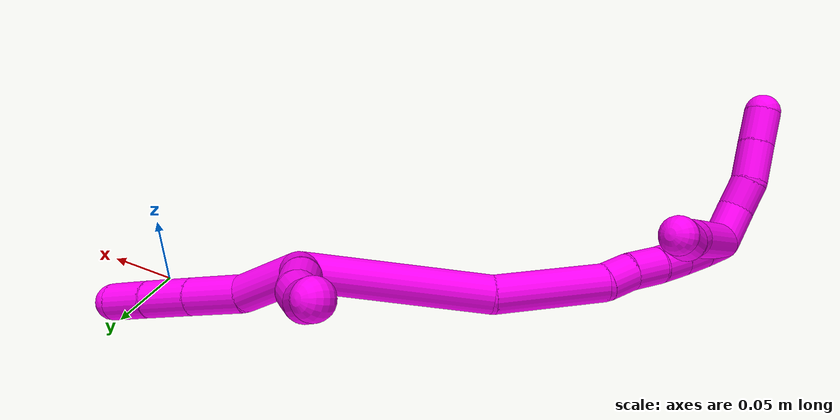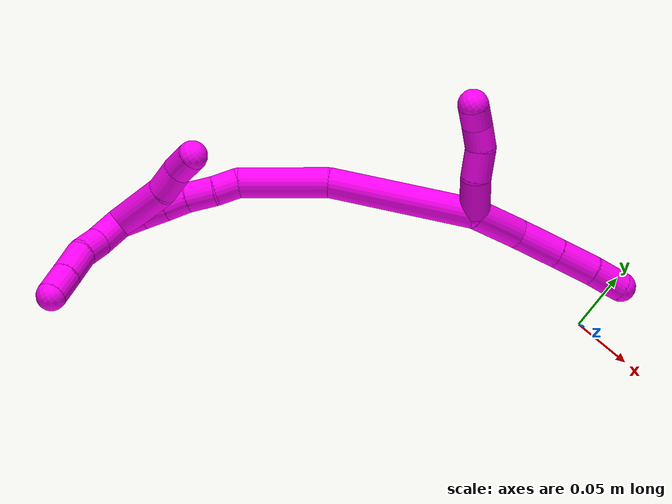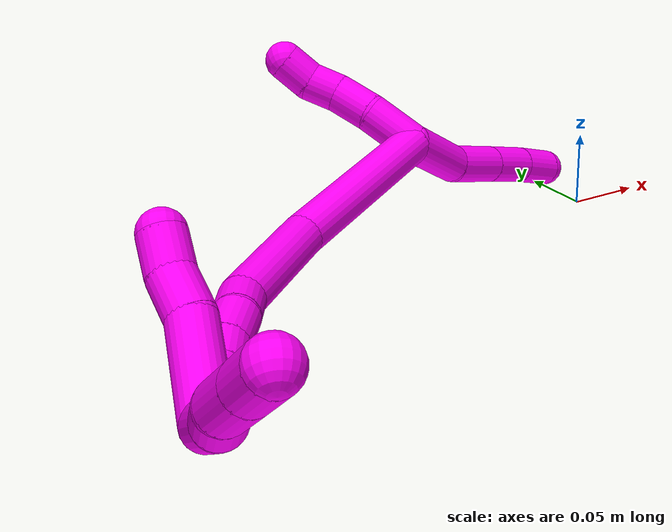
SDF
<sdf version="1.7">
 <world name="default">
  <model name="10">
   <static>0</static>
   <link name="10">
    <collision name="collision-cylinder-e_1_2_8">
     <pose>-0.00165 0.023048 -0.003395 -1.71707 -0.070692 0.081858</pose>
     <geometry><cylinder><radius>0.0125</radius><length>0.046711</length></cylinder></geometry>
     <surface>
      <friction><ode><mu>1.16</mu><mu2>1.16</mu2><slip1>0</slip1><slip2>0</slip2></ode></friction>
      <contact><ode><kp>1e+06</kp><kd>1</kd><max_vel>0</max_vel><min_depth>0.001</min_depth></ode></contact>
     </surface>
    </collision>
    <visual name="visual-cylinder-e_1_2_8">
     <pose>-0.00165 0.023048 -0.003395 -1.71707 -0.070692 0.081858</pose>
     <geometry><cylinder><radius>0.0125</radius><length>0.046711</length></cylinder></geometry>
     <material><ambient>1 0 0.964706 1</ambient></material>
    </visual>
    <collision name="collision-cylinder-e_2_8_9">
     <pose>-0.009057 0.063571 -0.013019 -1.91315 -0.300934 0.423526</pose>
     <geometry><cylinder><radius>0.0125</radius><length>0.038849</length></cylinder></geometry>
     <surface>
      <friction><ode><mu>1.16</mu><mu2>1.16</mu2><slip1>0</slip1><slip2>0</slip2></ode></friction>
      <contact><ode><kp>1e+06</kp><kd>1</kd><max_vel>0</max_vel><min_depth>0.001</min_depth></ode></contact>
     </surface>
    </collision>
    <visual name="visual-cylinder-e_2_8_9">
     <pose>-0.009057 0.063571 -0.013019 -1.91315 -0.300934 0.423526</pose>
     <geometry><cylinder><radius>0.0125</radius><length>0.038849</length></cylinder></geometry>
     <material><ambient>1 0 0.964706 1</ambient></material>
    </visual>
    <collision name="collision-cylinder-e_3_9_10">
     <pose>-0.019871 0.096558 -0.02462 -1.90424 -0.298811 0.416746</pose>
     <geometry><cylinder><radius>0.0125</radius><length>0.034353</length></cylinder></geometry>
     <surface>
      <friction><ode><mu>1.16</mu><mu2>1.16</mu2><slip1>0</slip1><slip2>0</slip2></ode></friction>
      <contact><ode><kp>1e+06</kp><kd>1</kd><max_vel>0</max_vel><min_depth>0.001</min_depth></ode></contact>
     </surface>
    </collision>
    <visual name="visual-cylinder-e_3_9_10">
     <pose>-0.019871 0.096558 -0.02462 -1.90424 -0.298811 0.416746</pose>
     <geometry><cylinder><radius>0.0125</radius><length>0.034353</length></cylinder></geometry>
     <material><ambient>1 0 0.964706 1</ambient></material>
    </visual>
    <collision name="collision-cylinder-e_4_10_6">
     <pose>-0.029411 0.125935 -0.033725 -1.83377 -0.302603 0.392753</pose>
     <geometry><cylinder><radius>0.0125</radius><length>0.030087</length></cylinder></geometry>
     <surface>
      <friction><ode><mu>1.16</mu><mu2>1.16</mu2><slip1>0</slip1><slip2>0</slip2></ode></friction>
      <contact><ode><kp>1e+06</kp><kd>1</kd><max_vel>0</max_vel><min_depth>0.001</min_depth></ode></contact>
     </surface>
    </collision>
    <visual name="visual-cylinder-e_4_10_6">
     <pose>-0.029411 0.125935 -0.033725 -1.83377 -0.302603 0.392753</pose>
     <geometry><cylinder><radius>0.0125</radius><length>0.030087</length></cylinder></geometry>
     <material><ambient>1 0 0.964706 1</ambient></material>
    </visual>
    <collision name="collision-cylinder-e_1_2_11">
     <pose>0.006763 -0.010929 -0.010827 2.35152 0.414164 0.933488</pose>
     <geometry><cylinder><radius>0.0125</radius><length>0.03361</length></cylinder></geometry>
     <surface>
      <friction><ode><mu>1.16</mu><mu2>1.16</mu2><slip1>0</slip1><slip2>0</slip2></ode></friction>
      <contact><ode><kp>1e+06</kp><kd>1</kd><max_vel>0</max_vel><min_depth>0.001</min_depth></ode></contact>
     </surface>
    </collision>
    <visual name="visual-cylinder-e_1_2_11">
     <pose>0.006763 -0.010929 -0.010827 2.35152 0.414164 0.933488</pose>
     <geometry><cylinder><radius>0.0125</radius><length>0.03361</length></cylinder></geometry>
     <material><ambient>1 0 0.964706 1</ambient></material>
    </visual>
    <collision name="collision-cylinder-e_2_11_12">
     <pose>0.020282 -0.028069 -0.030659 2.53775 0.553308 1.47845</pose>
     <geometry><cylinder><radius>0.0125</radius><length>0.025715</length></cylinder></geometry>
     <surface>
      <friction><ode><mu>1.16</mu><mu2>1.16</mu2><slip1>0</slip1><slip2>0</slip2></ode></friction>
      <contact><ode><kp>1e+06</kp><kd>1</kd><max_vel>0</max_vel><min_depth>0.001</min_depth></ode></contact>
     </surface>
    </collision>
    <visual name="visual-cylinder-e_2_11_12">
     <pose>0.020282 -0.028069 -0.030659 2.53775 0.553308 1.47845</pose>
     <geometry><cylinder><radius>0.0125</radius><length>0.025715</length></cylinder></geometry>
     <material><ambient>1 0 0.964706 1</ambient></material>
    </visual>
    <collision name="collision-cylinder-e_3_12_13">
     <pose>0.032782 -0.041184 -0.044405 2.17264 0.601061 1.06436</pose>
     <geometry><cylinder><radius>0.0125</radius><length>0.020309</length></cylinder></geometry>
     <surface>
      <friction><ode><mu>1.16</mu><mu2>1.16</mu2><slip1>0</slip1><slip2>0</slip2></ode></friction>
      <contact><ode><kp>1e+06</kp><kd>1</kd><max_vel>0</max_vel><min_depth>0.001</min_depth></ode></contact>
     </surface>
    </collision>
    <visual name="visual-cylinder-e_3_12_13">
     <pose>0.032782 -0.041184 -0.044405 2.17264 0.601061 1.06436</pose>
     <geometry><cylinder><radius>0.0125</radius><length>0.020309</length></cylinder></geometry>
     <material><ambient>1 0 0.964706 1</ambient></material>
    </visual>
    <collision name="collision-cylinder-e_4_13_5">
     <pose>0.041204 -0.056325 -0.054499 2.14699 0.266305 0.483861</pose>
     <geometry><cylinder><radius>0.0125</radius><length>0.020366</length></cylinder></geometry>
     <surface>
      <friction><ode><mu>1.16</mu><mu2>1.16</mu2><slip1>0</slip1><slip2>0</slip2></ode></friction>
      <contact><ode><kp>1e+06</kp><kd>1</kd><max_vel>0</max_vel><min_depth>0.001</min_depth></ode></contact>
     </surface>
    </collision>
    <visual name="visual-cylinder-e_4_13_5">
     <pose>0.041204 -0.056325 -0.054499 2.14699 0.266305 0.483861</pose>
     <geometry><cylinder><radius>0.0125</radius><length>0.020366</length></cylinder></geometry>
     <material><ambient>1 0 0.964706 1</ambient></material>
    </visual>
    <collision name="collision-cylinder-e_1_2_14">
     <pose>0.022131 -0.03757 0.042318 0.726039 0.372803 0.14303</pose>
     <geometry><cylinder><radius>0.0125</radius><length>0.121525</length></cylinder></geometry>
     <surface>
      <friction><ode><mu>1.16</mu><mu2>1.16</mu2><slip1>0</slip1><slip2>0</slip2></ode></friction>
      <contact><ode><kp>1e+06</kp><kd>1</kd><max_vel>0</max_vel><min_depth>0.001</min_depth></ode></contact>
     </surface>
    </collision>
    <visual name="visual-cylinder-e_1_2_14">
     <pose>0.022131 -0.03757 0.042318 0.726039 0.372803 0.14303</pose>
     <geometry><cylinder><radius>0.0125</radius><length>0.121525</length></cylinder></geometry>
     <material><ambient>1 0 0.964706 1</ambient></material>
    </visual>
    <collision name="collision-cylinder-e_2_14_15">
     <pose>0.049186 -0.098944 0.112779 0.702066 0.132778 0.048685</pose>
     <geometry><cylinder><radius>0.0125</radius><length>0.074375</length></cylinder></geometry>
     <surface>
      <friction><ode><mu>1.16</mu><mu2>1.16</mu2><slip1>0</slip1><slip2>0</slip2></ode></friction>
      <contact><ode><kp>1e+06</kp><kd>1</kd><max_vel>0</max_vel><min_depth>0.001</min_depth></ode></contact>
     </surface>
    </collision>
    <visual name="visual-cylinder-e_2_14_15">
     <pose>0.049186 -0.098944 0.112779 0.702066 0.132778 0.048685</pose>
     <geometry><cylinder><radius>0.0125</radius><length>0.074375</length></cylinder></geometry>
     <material><ambient>1 0 0.964706 1</ambient></material>
    </visual>
    <collision name="collision-cylinder-e_3_15_16">
     <pose>0.052325 -0.128105 0.149444 0.561152 -0.175454 -0.050681</pose>
     <geometry><cylinder><radius>0.0125</radius><length>0.020446</length></cylinder></geometry>
     <surface>
      <friction><ode><mu>1.16</mu><mu2>1.16</mu2><slip1>0</slip1><slip2>0</slip2></ode></friction>
      <contact><ode><kp>1e+06</kp><kd>1</kd><max_vel>0</max_vel><min_depth>0.001</min_depth></ode></contact>
     </surface>
    </collision>
    <visual name="visual-cylinder-e_3_15_16">
     <pose>0.052325 -0.128105 0.149444 0.561152 -0.175454 -0.050681</pose>
     <geometry><cylinder><radius>0.0125</radius><length>0.020446</length></cylinder></geometry>
     <material><ambient>1 0 0.964706 1</ambient></material>
    </visual>
    <collision name="collision-cylinder-e_4_16_17">
     <pose>0.050258 -0.139253 0.168136 0.517618 -0.024158 -0.006396</pose>
     <geometry><cylinder><radius>0.0125</radius><length>0.023412</length></cylinder></geometry>
     <surface>
      <friction><ode><mu>1.16</mu><mu2>1.16</mu2><slip1>0</slip1><slip2>0</slip2></ode></friction>
      <contact><ode><kp>1e+06</kp><kd>1</kd><max_vel>0</max_vel><min_depth>0.001</min_depth></ode></contact>
     </surface>
    </collision>
    <visual name="visual-cylinder-e_4_16_17">
     <pose>0.050258 -0.139253 0.168136 0.517618 -0.024158 -0.006396</pose>
     <geometry><cylinder><radius>0.0125</radius><length>0.023412</length></cylinder></geometry>
     <material><ambient>1 0 0.964706 1</ambient></material>
    </visual>
    <collision name="collision-cylinder-e_5_17_18">
     <pose>0.048838 -0.149104 0.187465 0.417318 -0.112969 -0.023944</pose>
     <geometry><cylinder><radius>0.0125</radius><length>0.020168</length></cylinder></geometry>
     <surface>
      <friction><ode><mu>1.16</mu><mu2>1.16</mu2><slip1>0</slip1><slip2>0</slip2></ode></friction>
      <contact><ode><kp>1e+06</kp><kd>1</kd><max_vel>0</max_vel><min_depth>0.001</min_depth></ode></contact>
     </surface>
    </collision>
    <visual name="visual-cylinder-e_5_17_18">
     <pose>0.048838 -0.149104 0.187465 0.417318 -0.112969 -0.023944</pose>
     <geometry><cylinder><radius>0.0125</radius><length>0.020168</length></cylinder></geometry>
     <material><ambient>1 0 0.964706 1</ambient></material>
    </visual>
    <collision name="collision-cylinder-e_6_18_19">
     <pose>0.046346 -0.157786 0.205425 0.483521 -0.1355 -0.03346</pose>
     <geometry><cylinder><radius>0.0125</radius><length>0.020063</length></cylinder></geometry>
     <surface>
      <friction><ode><mu>1.16</mu><mu2>1.16</mu2><slip1>0</slip1><slip2>0</slip2></ode></friction>
      <contact><ode><kp>1e+06</kp><kd>1</kd><max_vel>0</max_vel><min_depth>0.001</min_depth></ode></contact>
     </surface>
    </collision>
    <visual name="visual-cylinder-e_6_18_19">
     <pose>0.046346 -0.157786 0.205425 0.483521 -0.1355 -0.03346</pose>
     <geometry><cylinder><radius>0.0125</radius><length>0.020063</length></cylinder></geometry>
     <material><ambient>1 0 0.964706 1</ambient></material>
    </visual>
    <collision name="collision-cylinder-e_7_19_1">
     <pose>0.043246 -0.167192 0.222838 0.507125 -0.175312 -0.045539</pose>
     <geometry><cylinder><radius>0.0125</radius><length>0.02001</length></cylinder></geometry>
     <surface>
      <friction><ode><mu>1.16</mu><mu2>1.16</mu2><slip1>0</slip1><slip2>0</slip2></ode></friction>
      <contact><ode><kp>1e+06</kp><kd>1</kd><max_vel>0</max_vel><min_depth>0.001</min_depth></ode></contact>
     </surface>
    </collision>
    <visual name="visual-cylinder-e_7_19_1">
     <pose>0.043246 -0.167192 0.222838 0.507125 -0.175312 -0.045539</pose>
     <geometry><cylinder><radius>0.0125</radius><length>0.02001</length></cylinder></geometry>
     <material><ambient>1 0 0.964706 1</ambient></material>
    </visual>
    <collision name="collision-cylinder-e_1_1_20">
     <pose>0.03207 -0.179404 0.237011 0.928071 -0.793508 -0.413389</pose>
     <geometry><cylinder><radius>0.0125</radius><length>0.026461</length></cylinder></geometry>
     <surface>
      <friction><ode><mu>1.16</mu><mu2>1.16</mu2><slip1>0</slip1><slip2>0</slip2></ode></friction>
      <contact><ode><kp>1e+06</kp><kd>1</kd><max_vel>0</max_vel><min_depth>0.001</min_depth></ode></contact>
     </surface>
    </collision>
    <visual name="visual-cylinder-e_1_1_20">
     <pose>0.03207 -0.179404 0.237011 0.928071 -0.793508 -0.413389</pose>
     <geometry><cylinder><radius>0.0125</radius><length>0.026461</length></cylinder></geometry>
     <material><ambient>1 0 0.964706 1</ambient></material>
    </visual>
    <collision name="collision-cylinder-e_2_20_21">
     <pose>0.015219 -0.194199 0.244781 1.27956 -0.767527 -0.583822</pose>
     <geometry><cylinder><radius>0.0125</radius><length>0.021374</length></cylinder></geometry>
     <surface>
      <friction><ode><mu>1.16</mu><mu2>1.16</mu2><slip1>0</slip1><slip2>0</slip2></ode></friction>
      <contact><ode><kp>1e+06</kp><kd>1</kd><max_vel>0</max_vel><min_depth>0.001</min_depth></ode></contact>
     </surface>
    </collision>
    <visual name="visual-cylinder-e_2_20_21">
     <pose>0.015219 -0.194199 0.244781 1.27956 -0.767527 -0.583822</pose>
     <geometry><cylinder><radius>0.0125</radius><length>0.021374</length></cylinder></geometry>
     <material><ambient>1 0 0.964706 1</ambient></material>
    </visual>
    <collision name="collision-cylinder-e_3_21_22">
     <pose>-0.00409 -0.2081 0.249966 1.14333 -1.02743 -0.696405</pose>
     <geometry><cylinder><radius>0.0125</radius><length>0.027777</length></cylinder></geometry>
     <surface>
      <friction><ode><mu>1.16</mu><mu2>1.16</mu2><slip1>0</slip1><slip2>0</slip2></ode></friction>
      <contact><ode><kp>1e+06</kp><kd>1</kd><max_vel>0</max_vel><min_depth>0.001</min_depth></ode></contact>
     </surface>
    </collision>
    <visual name="visual-cylinder-e_3_21_22">
     <pose>-0.00409 -0.2081 0.249966 1.14333 -1.02743 -0.696405</pose>
     <geometry><cylinder><radius>0.0125</radius><length>0.027777</length></cylinder></geometry>
     <material><ambient>1 0 0.964706 1</ambient></material>
    </visual>
    <collision name="collision-cylinder-e_4_22_4">
     <pose>-0.026334 -0.220511 0.255576 1.14952 -1.01447 -0.691024</pose>
     <geometry><cylinder><radius>0.0125</radius><length>0.024388</length></cylinder></geometry>
     <surface>
      <friction><ode><mu>1.16</mu><mu2>1.16</mu2><slip1>0</slip1><slip2>0</slip2></ode></friction>
      <contact><ode><kp>1e+06</kp><kd>1</kd><max_vel>0</max_vel><min_depth>0.001</min_depth></ode></contact>
     </surface>
    </collision>
    <visual name="visual-cylinder-e_4_22_4">
     <pose>-0.026334 -0.220511 0.255576 1.14952 -1.01447 -0.691024</pose>
     <geometry><cylinder><radius>0.0125</radius><length>0.024388</length></cylinder></geometry>
     <material><ambient>1 0 0.964706 1</ambient></material>
    </visual>
    <collision name="collision-cylinder-e_1_1_23">
     <pose>0.042407 -0.173186 0.204993 3.09592 0.034203 1.28538</pose>
     <geometry><cylinder><radius>0.0125</radius><length>0.052998</length></cylinder></geometry>
     <surface>
      <friction><ode><mu>1.16</mu><mu2>1.16</mu2><slip1>0</slip1><slip2>0</slip2></ode></friction>
      <contact><ode><kp>1e+06</kp><kd>1</kd><max_vel>0</max_vel><min_depth>0.001</min_depth></ode></contact>
     </surface>
    </collision>
    <visual name="visual-cylinder-e_1_1_23">
     <pose>0.042407 -0.173186 0.204993 3.09592 0.034203 1.28538</pose>
     <geometry><cylinder><radius>0.0125</radius><length>0.052998</length></cylinder></geometry>
     <material><ambient>1 0 0.964706 1</ambient></material>
    </visual>
    <collision name="collision-cylinder-e_2_23_24">
     <pose>0.04614 -0.176761 0.166667 2.94486 0.229444 1.72517</pose>
     <geometry><cylinder><radius>0.0125</radius><length>0.02486</length></cylinder></geometry>
     <surface>
      <friction><ode><mu>1.16</mu><mu2>1.16</mu2><slip1>0</slip1><slip2>0</slip2></ode></friction>
      <contact><ode><kp>1e+06</kp><kd>1</kd><max_vel>0</max_vel><min_depth>0.001</min_depth></ode></contact>
     </surface>
    </collision>
    <visual name="visual-cylinder-e_2_23_24">
     <pose>0.04614 -0.176761 0.166667 2.94486 0.229444 1.72517</pose>
     <geometry><cylinder><radius>0.0125</radius><length>0.02486</length></cylinder></geometry>
     <material><ambient>1 0 0.964706 1</ambient></material>
    </visual>
    <collision name="collision-cylinder-e_3_24_3">
     <pose>0.048736 -0.181633 0.144015 2.91319 -0.020872 -0.181481</pose>
     <geometry><cylinder><radius>0.0125</radius><length>0.022142</length></cylinder></geometry>
     <surface>
      <friction><ode><mu>1.16</mu><mu2>1.16</mu2><slip1>0</slip1><slip2>0</slip2></ode></friction>
      <contact><ode><kp>1e+06</kp><kd>1</kd><max_vel>0</max_vel><min_depth>0.001</min_depth></ode></contact>
     </surface>
    </collision>
    <visual name="visual-cylinder-e_3_24_3">
     <pose>0.048736 -0.181633 0.144015 2.91319 -0.020872 -0.181481</pose>
     <geometry><cylinder><radius>0.0125</radius><length>0.022142</length></cylinder></geometry>
     <material><ambient>1 0 0.964706 1</ambient></material>
    </visual>
    <collision name="collision-sphere-3">
     <pose>0.048505 -0.184139 0.133234 0 -0 0</pose>
     <geometry><sphere><radius>0.0125</radius></sphere></geometry>
     <surface>
      <friction><ode><mu>1.16</mu><mu2>1.16</mu2><slip1>0</slip1><slip2>0</slip2></ode></friction>
      <contact><ode><kp>1e+06</kp><kd>1</kd><max_vel>0</max_vel><min_depth>0.001</min_depth></ode></contact>
     </surface>
    </collision>
    <visual name="visual-sphere-3">
     <pose>0.048505 -0.184139 0.133234 0 -0 0</pose>
     <geometry><sphere><radius>0.0125</radius></sphere></geometry>
     <material><ambient>1 0 0.964706 1</ambient></material>
    </visual>
    <collision name="collision-sphere-24">
     <pose>0.048967 -0.179127 0.154796 0 -0 0</pose>
     <geometry><sphere><radius>0.0125</radius></sphere></geometry>
     <surface>
      <friction><ode><mu>1.16</mu><mu2>1.16</mu2><slip1>0</slip1><slip2>0</slip2></ode></friction>
      <contact><ode><kp>1e+06</kp><kd>1</kd><max_vel>0</max_vel><min_depth>0.001</min_depth></ode></contact>
     </surface>
    </collision>
    <visual name="visual-sphere-24">
     <pose>0.048967 -0.179127 0.154796 0 -0 0</pose>
     <geometry><sphere><radius>0.0125</radius></sphere></geometry>
     <material><ambient>1 0 0.964706 1</ambient></material>
    </visual>
    <collision name="collision-sphere-23">
     <pose>0.043313 -0.174395 0.178537 0 -0 0</pose>
     <geometry><sphere><radius>0.0125</radius></sphere></geometry>
     <surface>
      <friction><ode><mu>1.16</mu><mu2>1.16</mu2><slip1>0</slip1><slip2>0</slip2></ode></friction>
      <contact><ode><kp>1e+06</kp><kd>1</kd><max_vel>0</max_vel><min_depth>0.001</min_depth></ode></contact>
     </surface>
    </collision>
    <visual name="visual-sphere-23">
     <pose>0.043313 -0.174395 0.178537 0 -0 0</pose>
     <geometry><sphere><radius>0.0125</radius></sphere></geometry>
     <material><ambient>1 0 0.964706 1</ambient></material>
    </visual>
    <collision name="collision-sphere-4">
     <pose>-0.036689 -0.226387 0.25821 0 -0 0</pose>
     <geometry><sphere><radius>0.0125</radius></sphere></geometry>
     <surface>
      <friction><ode><mu>1.16</mu><mu2>1.16</mu2><slip1>0</slip1><slip2>0</slip2></ode></friction>
      <contact><ode><kp>1e+06</kp><kd>1</kd><max_vel>0</max_vel><min_depth>0.001</min_depth></ode></contact>
     </surface>
    </collision>
    <visual name="visual-sphere-4">
     <pose>-0.036689 -0.226387 0.25821 0 -0 0</pose>
     <geometry><sphere><radius>0.0125</radius></sphere></geometry>
     <material><ambient>1 0 0.964706 1</ambient></material>
    </visual>
    <collision name="collision-sphere-22">
     <pose>-0.015979 -0.214635 0.252943 0 -0 0</pose>
     <geometry><sphere><radius>0.0125</radius></sphere></geometry>
     <surface>
      <friction><ode><mu>1.16</mu><mu2>1.16</mu2><slip1>0</slip1><slip2>0</slip2></ode></friction>
      <contact><ode><kp>1e+06</kp><kd>1</kd><max_vel>0</max_vel><min_depth>0.001</min_depth></ode></contact>
     </surface>
    </collision>
    <visual name="visual-sphere-22">
     <pose>-0.015979 -0.214635 0.252943 0 -0 0</pose>
     <geometry><sphere><radius>0.0125</radius></sphere></geometry>
     <material><ambient>1 0 0.964706 1</ambient></material>
    </visual>
    <collision name="collision-sphere-21">
     <pose>0.007798 -0.201566 0.246989 0 -0 0</pose>
     <geometry><sphere><radius>0.0125</radius></sphere></geometry>
     <surface>
      <friction><ode><mu>1.16</mu><mu2>1.16</mu2><slip1>0</slip1><slip2>0</slip2></ode></friction>
      <contact><ode><kp>1e+06</kp><kd>1</kd><max_vel>0</max_vel><min_depth>0.001</min_depth></ode></contact>
     </surface>
    </collision>
    <visual name="visual-sphere-21">
     <pose>0.007798 -0.201566 0.246989 0 -0 0</pose>
     <geometry><sphere><radius>0.0125</radius></sphere></geometry>
     <material><ambient>1 0 0.964706 1</ambient></material>
    </visual>
    <collision name="collision-sphere-20">
     <pose>0.022639 -0.186832 0.242573 0 -0 0</pose>
     <geometry><sphere><radius>0.0125</radius></sphere></geometry>
     <surface>
      <friction><ode><mu>1.16</mu><mu2>1.16</mu2><slip1>0</slip1><slip2>0</slip2></ode></friction>
      <contact><ode><kp>1e+06</kp><kd>1</kd><max_vel>0</max_vel><min_depth>0.001</min_depth></ode></contact>
     </surface>
    </collision>
    <visual name="visual-sphere-20">
     <pose>0.022639 -0.186832 0.242573 0 -0 0</pose>
     <geometry><sphere><radius>0.0125</radius></sphere></geometry>
     <material><ambient>1 0 0.964706 1</ambient></material>
    </visual>
    <collision name="collision-sphere-11">
     <pose>0.013526 -0.021858 -0.021655 0 -0 0</pose>
     <geometry><sphere><radius>0.0125</radius></sphere></geometry>
     <surface>
      <friction><ode><mu>1.16</mu><mu2>1.16</mu2><slip1>0</slip1><slip2>0</slip2></ode></friction>
      <contact><ode><kp>1e+06</kp><kd>1</kd><max_vel>0</max_vel><min_depth>0.001</min_depth></ode></contact>
     </surface>
    </collision>
    <visual name="visual-sphere-11">
     <pose>0.013526 -0.021858 -0.021655 0 -0 0</pose>
     <geometry><sphere><radius>0.0125</radius></sphere></geometry>
     <material><ambient>1 0 0.964706 1</ambient></material>
    </visual>
    <collision name="collision-sphere-6">
     <pose>-0.033894 0.139802 -0.037458 0 -0 0</pose>
     <geometry><sphere><radius>0.0125</radius></sphere></geometry>
     <surface>
      <friction><ode><mu>1.16</mu><mu2>1.16</mu2><slip1>0</slip1><slip2>0</slip2></ode></friction>
      <contact><ode><kp>1e+06</kp><kd>1</kd><max_vel>0</max_vel><min_depth>0.001</min_depth></ode></contact>
     </surface>
    </collision>
    <visual name="visual-sphere-6">
     <pose>-0.033894 0.139802 -0.037458 0 -0 0</pose>
     <geometry><sphere><radius>0.0125</radius></sphere></geometry>
     <material><ambient>1 0 0.964706 1</ambient></material>
    </visual>
    <collision name="collision-sphere-10">
     <pose>-0.024928 0.112069 -0.029992 0 -0 0</pose>
     <geometry><sphere><radius>0.0125</radius></sphere></geometry>
     <surface>
      <friction><ode><mu>1.16</mu><mu2>1.16</mu2><slip1>0</slip1><slip2>0</slip2></ode></friction>
      <contact><ode><kp>1e+06</kp><kd>1</kd><max_vel>0</max_vel><min_depth>0.001</min_depth></ode></contact>
     </surface>
    </collision>
    <visual name="visual-sphere-10">
     <pose>-0.024928 0.112069 -0.029992 0 -0 0</pose>
     <geometry><sphere><radius>0.0125</radius></sphere></geometry>
     <material><ambient>1 0 0.964706 1</ambient></material>
    </visual>
    <collision name="collision-sphere-9">
     <pose>-0.014815 0.081046 -0.019247 0 -0 0</pose>
     <geometry><sphere><radius>0.0125</radius></sphere></geometry>
     <surface>
      <friction><ode><mu>1.16</mu><mu2>1.16</mu2><slip1>0</slip1><slip2>0</slip2></ode></friction>
      <contact><ode><kp>1e+06</kp><kd>1</kd><max_vel>0</max_vel><min_depth>0.001</min_depth></ode></contact>
     </surface>
    </collision>
    <visual name="visual-sphere-9">
     <pose>-0.014815 0.081046 -0.019247 0 -0 0</pose>
     <geometry><sphere><radius>0.0125</radius></sphere></geometry>
     <material><ambient>1 0 0.964706 1</ambient></material>
    </visual>
    <collision name="collision-sphere-2">
     <geometry><sphere><radius>0.0125</radius></sphere></geometry>
     <surface>
      <friction><ode><mu>1.16</mu><mu2>1.16</mu2><slip1>0</slip1><slip2>0</slip2></ode></friction>
      <contact><ode><kp>1e+06</kp><kd>1</kd><max_vel>0</max_vel><min_depth>0.001</min_depth></ode></contact>
     </surface>
    </collision>
    <visual name="visual-sphere-2">
     <geometry><sphere><radius>0.0125</radius></sphere></geometry>
     <material><ambient>1 0 0.964706 1</ambient></material>
    </visual>
    <collision name="collision-sphere-19">
     <pose>0.044991 -0.162407 0.214226 0 -0 0</pose>
     <geometry><sphere><radius>0.0125</radius></sphere></geometry>
     <surface>
      <friction><ode><mu>1.16</mu><mu2>1.16</mu2><slip1>0</slip1><slip2>0</slip2></ode></friction>
      <contact><ode><kp>1e+06</kp><kd>1</kd><max_vel>0</max_vel><min_depth>0.001</min_depth></ode></contact>
     </surface>
    </collision>
    <visual name="visual-sphere-19">
     <pose>0.044991 -0.162407 0.214226 0 -0 0</pose>
     <geometry><sphere><radius>0.0125</radius></sphere></geometry>
     <material><ambient>1 0 0.964706 1</ambient></material>
    </visual>
    <collision name="collision-sphere-8">
     <pose>-0.003299 0.046096 -0.006791 0 -0 0</pose>
     <geometry><sphere><radius>0.0125</radius></sphere></geometry>
     <surface>
      <friction><ode><mu>1.16</mu><mu2>1.16</mu2><slip1>0</slip1><slip2>0</slip2></ode></friction>
      <contact><ode><kp>1e+06</kp><kd>1</kd><max_vel>0</max_vel><min_depth>0.001</min_depth></ode></contact>
     </surface>
    </collision>
    <visual name="visual-sphere-8">
     <pose>-0.003299 0.046096 -0.006791 0 -0 0</pose>
     <geometry><sphere><radius>0.0125</radius></sphere></geometry>
     <material><ambient>1 0 0.964706 1</ambient></material>
    </visual>
    <collision name="collision-sphere-12">
     <pose>0.027039 -0.034281 -0.039664 0 -0 0</pose>
     <geometry><sphere><radius>0.0125</radius></sphere></geometry>
     <surface>
      <friction><ode><mu>1.16</mu><mu2>1.16</mu2><slip1>0</slip1><slip2>0</slip2></ode></friction>
      <contact><ode><kp>1e+06</kp><kd>1</kd><max_vel>0</max_vel><min_depth>0.001</min_depth></ode></contact>
     </surface>
    </collision>
    <visual name="visual-sphere-12">
     <pose>0.027039 -0.034281 -0.039664 0 -0 0</pose>
     <geometry><sphere><radius>0.0125</radius></sphere></geometry>
     <material><ambient>1 0 0.964706 1</ambient></material>
    </visual>
    <collision name="collision-sphere-13">
     <pose>0.038524 -0.048087 -0.049147 0 -0 0</pose>
     <geometry><sphere><radius>0.0125</radius></sphere></geometry>
     <surface>
      <friction><ode><mu>1.16</mu><mu2>1.16</mu2><slip1>0</slip1><slip2>0</slip2></ode></friction>
      <contact><ode><kp>1e+06</kp><kd>1</kd><max_vel>0</max_vel><min_depth>0.001</min_depth></ode></contact>
     </surface>
    </collision>
    <visual name="visual-sphere-13">
     <pose>0.038524 -0.048087 -0.049147 0 -0 0</pose>
     <geometry><sphere><radius>0.0125</radius></sphere></geometry>
     <material><ambient>1 0 0.964706 1</ambient></material>
    </visual>
    <collision name="collision-sphere-5">
     <pose>0.043884 -0.064563 -0.059852 0 -0 0</pose>
     <geometry><sphere><radius>0.0125</radius></sphere></geometry>
     <surface>
      <friction><ode><mu>1.16</mu><mu2>1.16</mu2><slip1>0</slip1><slip2>0</slip2></ode></friction>
      <contact><ode><kp>1e+06</kp><kd>1</kd><max_vel>0</max_vel><min_depth>0.001</min_depth></ode></contact>
     </surface>
    </collision>
    <visual name="visual-sphere-5">
     <pose>0.043884 -0.064563 -0.059852 0 -0 0</pose>
     <geometry><sphere><radius>0.0125</radius></sphere></geometry>
     <material><ambient>1 0 0.964706 1</ambient></material>
    </visual>
    <collision name="collision-sphere-14">
     <pose>0.044263 -0.07514 0.084635 0 -0 0</pose>
     <geometry><sphere><radius>0.0125</radius></sphere></geometry>
     <surface>
      <friction><ode><mu>1.16</mu><mu2>1.16</mu2><slip1>0</slip1><slip2>0</slip2></ode></friction>
      <contact><ode><kp>1e+06</kp><kd>1</kd><max_vel>0</max_vel><min_depth>0.001</min_depth></ode></contact>
     </surface>
    </collision>
    <visual name="visual-sphere-14">
     <pose>0.044263 -0.07514 0.084635 0 -0 0</pose>
     <geometry><sphere><radius>0.0125</radius></sphere></geometry>
     <material><ambient>1 0 0.964706 1</ambient></material>
    </visual>
    <collision name="collision-sphere-15">
     <pose>0.054109 -0.122748 0.140922 0 -0 0</pose>
     <geometry><sphere><radius>0.0125</radius></sphere></geometry>
     <surface>
      <friction><ode><mu>1.16</mu><mu2>1.16</mu2><slip1>0</slip1><slip2>0</slip2></ode></friction>
      <contact><ode><kp>1e+06</kp><kd>1</kd><max_vel>0</max_vel><min_depth>0.001</min_depth></ode></contact>
     </surface>
    </collision>
    <visual name="visual-sphere-15">
     <pose>0.054109 -0.122748 0.140922 0 -0 0</pose>
     <geometry><sphere><radius>0.0125</radius></sphere></geometry>
     <material><ambient>1 0 0.964706 1</ambient></material>
    </visual>
    <collision name="collision-sphere-16">
     <pose>0.05054 -0.133462 0.157966 0 -0 0</pose>
     <geometry><sphere><radius>0.0125</radius></sphere></geometry>
     <surface>
      <friction><ode><mu>1.16</mu><mu2>1.16</mu2><slip1>0</slip1><slip2>0</slip2></ode></friction>
      <contact><ode><kp>1e+06</kp><kd>1</kd><max_vel>0</max_vel><min_depth>0.001</min_depth></ode></contact>
     </surface>
    </collision>
    <visual name="visual-sphere-16">
     <pose>0.05054 -0.133462 0.157966 0 -0 0</pose>
     <geometry><sphere><radius>0.0125</radius></sphere></geometry>
     <material><ambient>1 0 0.964706 1</ambient></material>
    </visual>
    <collision name="collision-sphere-17">
     <pose>0.049975 -0.145043 0.178305 0 -0 0</pose>
     <geometry><sphere><radius>0.0125</radius></sphere></geometry>
     <surface>
      <friction><ode><mu>1.16</mu><mu2>1.16</mu2><slip1>0</slip1><slip2>0</slip2></ode></friction>
      <contact><ode><kp>1e+06</kp><kd>1</kd><max_vel>0</max_vel><min_depth>0.001</min_depth></ode></contact>
     </surface>
    </collision>
    <visual name="visual-sphere-17">
     <pose>0.049975 -0.145043 0.178305 0 -0 0</pose>
     <geometry><sphere><radius>0.0125</radius></sphere></geometry>
     <material><ambient>1 0 0.964706 1</ambient></material>
    </visual>
    <collision name="collision-sphere-18">
     <pose>0.047701 -0.153165 0.196625 0 -0 0</pose>
     <geometry><sphere><radius>0.0125</radius></sphere></geometry>
     <surface>
      <friction><ode><mu>1.16</mu><mu2>1.16</mu2><slip1>0</slip1><slip2>0</slip2></ode></friction>
      <contact><ode><kp>1e+06</kp><kd>1</kd><max_vel>0</max_vel><min_depth>0.001</min_depth></ode></contact>
     </surface>
    </collision>
    <visual name="visual-sphere-18">
     <pose>0.047701 -0.153165 0.196625 0 -0 0</pose>
     <geometry><sphere><radius>0.0125</radius></sphere></geometry>
     <material><ambient>1 0 0.964706 1</ambient></material>
    </visual>
    <collision name="collision-sphere-1">
     <pose>0.041501 -0.171977 0.231449 0 -0 0</pose>
     <geometry><sphere><radius>0.0125</radius></sphere></geometry>
     <surface>
      <friction><ode><mu>1.16</mu><mu2>1.16</mu2><slip1>0</slip1><slip2>0</slip2></ode></friction>
      <contact><ode><kp>1e+06</kp><kd>1</kd><max_vel>0</max_vel><min_depth>0.001</min_depth></ode></contact>
     </surface>
    </collision>
    <visual name="visual-sphere-1">
     <pose>0.041501 -0.171977 0.231449 0 -0 0</pose>
     <geometry><sphere><radius>0.0125</radius></sphere></geometry>
     <material><ambient>1 0 0.964706 1</ambient></material>
    </visual>
    <inertial>
     <pose>0.022031 -0.076525 0.093428 0 -0 0</pose>
     <mass>0.75</mass>
     <inertia>
      <ixx>0.000271</ixx>
      <ixy>0</ixy>
      <ixz>0</ixz>
      <iyy>0.000188</iyy>
      <iyz>0</iyz>
      <izz>6.4e-05</izz>
     </inertia>
    </inertial>
   </link>
   <pose>-0.128598 0.013805 0.064572 -2.23285 0.587794 2.39062</pose>
  </model>
 </world>
</sdf>
